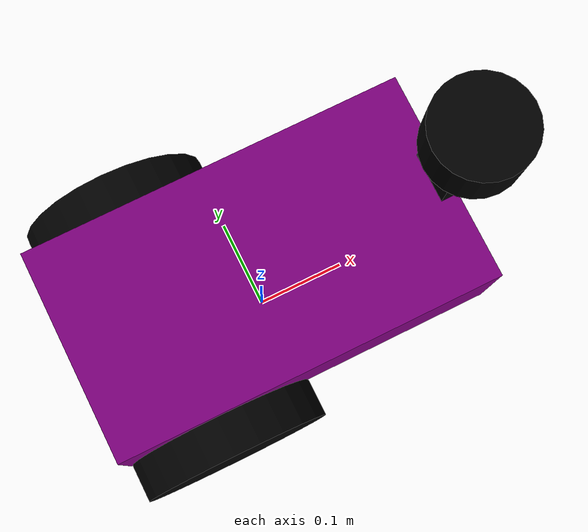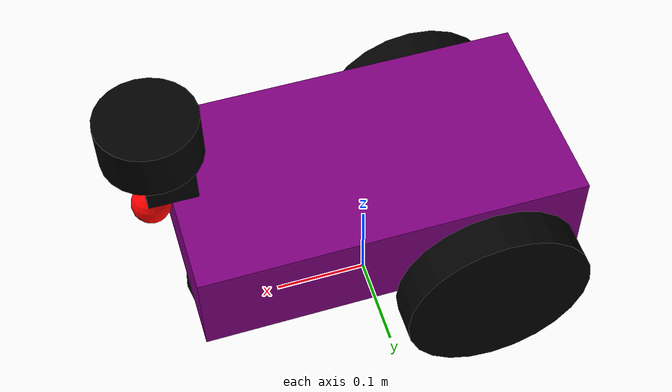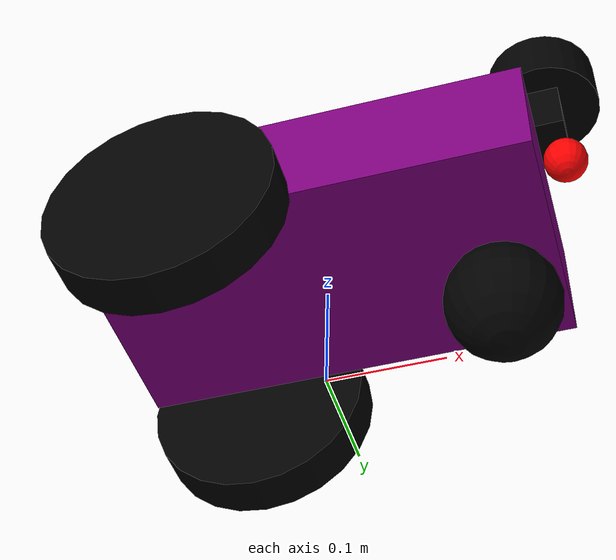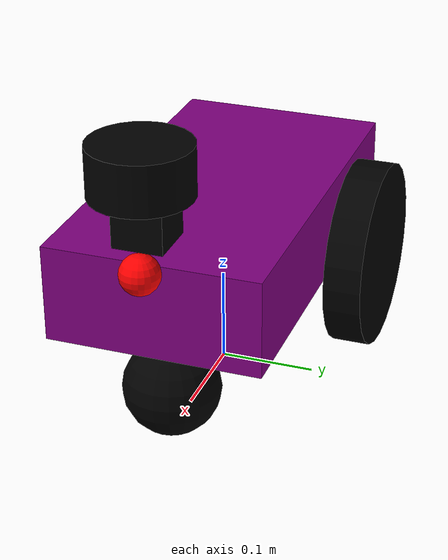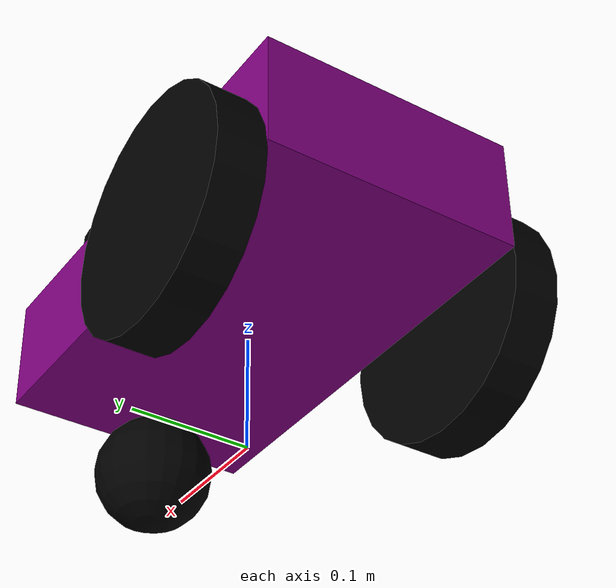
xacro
<?xml version="1.0"?>
<robot name="com760Bot" xmlns:xacro="http://www.ros.org/wiki/xacro">

  <material name="purple"><color rgba="0.5 0 0.5 1"/></material>
  <material name="black"><color rgba="0 0 0 1"/></material>
  <material name="red"><color rgba="1 0 0 1"/></material>

  <xacro:macro name="cylinder_inertia" params="m r h">
    <inertial>
      <mass value="${m}"/>
      <inertia ixx="${(m/12)*(3*r*r+h*h)}" ixy="0" ixz="0" iyy="${(m/12)*(3*r*r+h*h)}" iyz="0" izz="${(m/2)*(r*r)}"/>
    </inertial>
  </xacro:macro>
  <xacro:macro name="box_inertia" params="m w h d">
    <inertial>
      <mass value="${m}"/>
      <inertia ixx="${(m/12)*(h*h+d*d)}" ixy="0" ixz="0" iyy="${(m/12)*(w*w+d*d)}" iyz="0" izz="${(m/12)*(w*w+h*h)}"/>
    </inertial>
  </xacro:macro>
<!-- This creates an empty frame that is used for 2D navigation, it is also the correct ROS convention for no collision and no visuals. These are required for Nav stack and TF tree correctness.-->
  <link name="base_footprint"/>
  <joint name="base_joint" type="fixed">
    <parent link="base_footprint"/><child link="base_link"/>
    <origin xyz="0 0 0.16" rpy="0 0 0"/>
<!-- This lifts the base_link above the ground, avoiding ground peneration and correctly fixing unwanted motion creating a strong TF hygiene. -->
  </joint>
<!-- This is the box geometry, this is appropriate for differential drive, it has a mass = 5kg which is realistic for a small mobile robot and the inertia is calculated via the macro.-->
  <link name="base_link">
    <visual>
      <geometry><box size="0.4 0.22 0.1"/></geometry>
      <material name="purple"/>
    </visual>
    <collision><geometry><box size="0.4 0.22 0.1"/></geometry></collision>
    <xacro:box_inertia m="5.0" w="0.4" h="0.1" d="0.22"/>
  </link>
  <link name="left_wheel">
    <visual><geometry><cylinder length="0.04" radius="0.1"/></geometry><material name="black"/></visual>
    <collision><geometry><cylinder length="0.04" radius="0.1"/></geometry></collision>
    <xacro:cylinder_inertia m="0.5" r="0.1" h="0.04"/>
  </link>
<!-- This shows continous infinite rotation as well as a rpy = -1.5708 rotates cylinder to roll correctly as well as a axis aligned with wheel spin. -->
  <joint name="wheel_left_joint" type="continuous">
    <parent link="base_link"/><child link="left_wheel"/><origin xyz="-0.1 0.13 -0.06" rpy="-1.5708 0 0"/><axis xyz="0 0 1"/>
  </joint>
  <link name="right_wheel">
    <visual><geometry><cylinder length="0.04" radius="0.1"/></geometry><material name="black"/></visual>
    <collision><geometry><cylinder length="0.04" radius="0.1"/></geometry></collision>
    <xacro:cylinder_inertia m="0.5" r="0.1" h="0.04"/>
  </link>
  <joint name="wheel_right_joint" type="continuous">
    <parent link="base_link"/><child link="right_wheel"/><origin xyz="-0.1 -0.13 -0.06" rpy="-1.5708 0 0"/><axis xyz="0 0 1"/>
  </joint>
  <link name="caster_link">
    <visual><geometry><sphere radius="0.05"/></geometry><material name="black"/></visual>
    <collision><geometry><sphere radius="0.05"/></geometry></collision>
    <inertial><mass value="0.1"/><inertia ixx="0.001" ixy="0" ixz="0" iyy="0.001" iyz="0" izz="0.001"/></inertial>
  </link>
  <joint name="caster_joint" type="fixed">
    <parent link="base_link"/><child link="caster_link"/><origin xyz="0.15 0 -0.11" rpy="0 0 0"/>
  </joint>
<!-- This is the sensor frames - laser frame. This uses a seperate link for LiDar and is positioned forward and elevated. -->
  <link name="base_scan">
    <visual><geometry><cylinder length="0.05" radius="0.05"/></geometry><material name="black"/></visual>
    <inertial><mass value="0.1"/><inertia ixx="0.0001" ixy="0" ixz="0" iyy="0.0001" iyz="0" izz="0.0001"/></inertial>
  </link>
  <joint name="scan_joint" type="fixed">
    <parent link="base_link"/><child link="base_scan"/><origin xyz="0.21 0 0.15" rpy="0 0 0"/>
  </joint>
<!-- This is the camera frame, it is an independent camera frame, it is also correctly attached to the base, this enables for a clean TF tree and sensor fusion. -->
  <link name="camera_link">
    <visual><geometry><box size="0.05 0.05 0.05"/></geometry><material name="black"/></visual>
    <inertial><mass value="0.1"/><inertia ixx="0.0001" ixy="0" ixz="0" iyy="0.0001" iyz="0" izz="0.0001"/></inertial>
  </link>
  <joint name="camera_joint" type="fixed">
    <parent link="base_link"/><child link="camera_link"/><origin xyz="0.2 0 0.1" rpy="0 0 0"/>
  </joint>
     <link name="gas_sensor_link">
    <visual><geometry><sphere radius="0.02"/></geometry><material name="red"/></visual>
    <collision name="gas_sensor_collision"><geometry><sphere radius="0.02"/></geometry></collision>
    <inertial><mass value="0.01"/><inertia ixx="0.0001" ixy="0" ixz="0" iyy="0.0001" iyz="0" izz="0.0001"/></inertial>
  </link>
  <joint name="gas_joint" type="fixed">
    <parent link="base_link"/><child link="gas_sensor_link"/><origin xyz="0.22 0 0.05" rpy="0 0 0"/>
  </joint>

  <gazebo>
<!-- This is the differential drive plugin. -->
    <plugin name="differential_drive_controller" filename="libgazebo_ros_diff_drive.so">
      <robotNamespace>/group6bot_0</robotNamespace><!--Namespaced which supports a multi-robot scenario. -->
      <updateRate>50</updateRate>
      <leftJoint>wheel_left_joint</leftJoint>
      <rightJoint>wheel_right_joint</rightJoint>
      <wheelSeparation>0.26</wheelSeparation>
      <wheelDiameter>0.2</wheelDiameter><!-- This matches the physical model above. -->
      <wheelTorque>200</wheelTorque> <wheelAcceleration>1.5</wheelAcceleration>
      <commandTopic>cmd_vel</commandTopic>
      <odometryTopic>odom</odometryTopic>
      <odometryFrame>odom</odometryFrame>
      <robotBaseFrame>base_footprint</robotBaseFrame><!-- This uses the correct navigation. -->
      <publishTf>true</publishTf>
      <publishOdomTF>true</publishOdomTF><!-- This uses proper TF broadcasting, it has no covariance setting for the odometry. -->
      <publishWheelTF>false</publishWheelTF>
    </plugin>
  </gazebo>
<!-- This is the Gas contact sensor. -->
  <gazebo reference="gas_sensor_link">
  <sensor name="gas_contact" type="contact">
<!-- This uses the Gazebo contact sensor, it also attaches to the dedicated gas sensor link. -->
    <always_on>true</always_on>
    <update_rate>50</update_rate>
    <contact>
      <collision>base_link_fixed_joint_lump__gas_sensor_collision</collision><!-- Thi is the collision reference from the hazard_world.-->
    </contact>
    <plugin name="gas_bumper_plugin" filename="libgazebo_ros_bumper.so"><!-- This publishes the gas_touch topic, it matches the poison gas zone logic with clear semantic meaning. -->
      <robotNamespace>/group6bot_0</robotNamespace>
      <bumperTopicName>gas_touch</bumperTopicName>
      <frameName>gas_sensor_link</frameName>
    </plugin>
  </sensor>
</gazebo>

  <gazebo reference="base_scan">
    <sensor type="ray" name="laser">
      <visualize>false</visualize> <ray>
        <scan><horizontal><samples>360</samples><min_angle>-3.1</min_angle><max_angle>3.1</max_angle></horizontal></scan>
<!-- This enables the LiDar sensor to have full 360 scan, it is suitable for SLAM and obstacle avoidance. -->
        <range><min>0.15</min><max>12.0</max></range><!-- Reasonable hybrid range for indoor/outdoor. -->
      </ray>
      <plugin name="gazebo_ros_laser" filename="libgazebo_ros_laser.so">
        <robotNamespace>/group6bot_0</robotNamespace>
        <topicName>scan</topicName><frameName>base_scan</frameName>
      </plugin>
    </sensor>
  </gazebo>

  <gazebo reference="camera_link">
    <sensor type="camera" name="main_camera">
      <visualize>false</visualize>
      <plugin name="camera_controller" filename="libgazebo_ros_camera.so">
        <robotNamespace>/group6bot_0</robotNamespace>
        <cameraName>camera</cameraName><imageTopicName>image_raw</imageTopicName><frameName>camera_link</frameName>
      </plugin>
    </sensor>
  </gazebo>

  <gazebo reference="base_link"><material>Gazebo/Purple</material><mu1>0.1</mu1> <mu2>0.1</mu2></gazebo><!-- Low friction base - good for avoiding snagging. -->
  <gazebo reference="left_wheel"><material>Gazebo/Black</material><mu1>2.0</mu1><mu2>2.0</mu2></gazebo><!-- High wheel friction - this is good for traction. -->
  <gazebo reference="right_wheel"><material>Gazebo/Black</material><mu1>2.0</mu1><mu2>2.0</mu2></gazebo>
  <gazebo reference="caster_link"><material>Gazebo/Black</material><mu1>0.0</mu1><mu2>0.0</mu2></gazebo><!-- The correct caster behaviour. -->

</robot>
